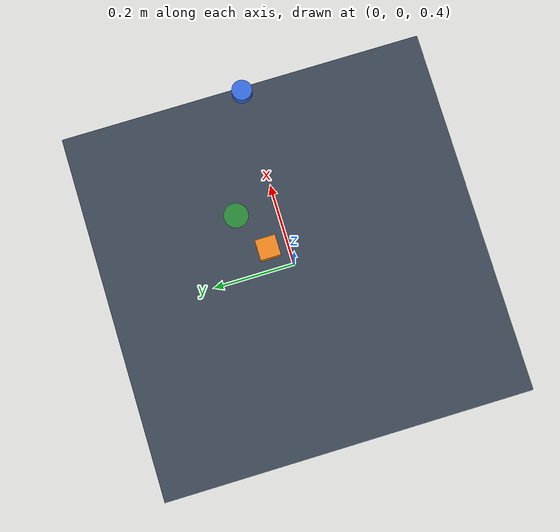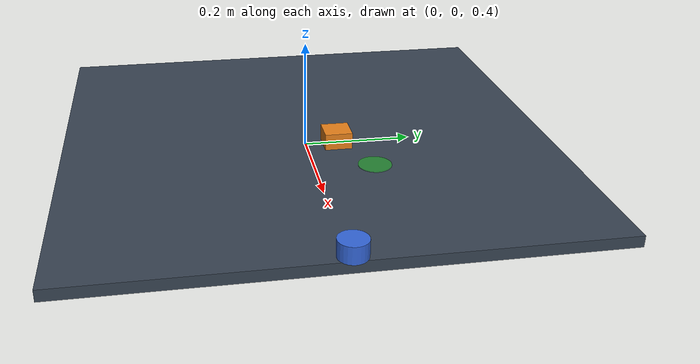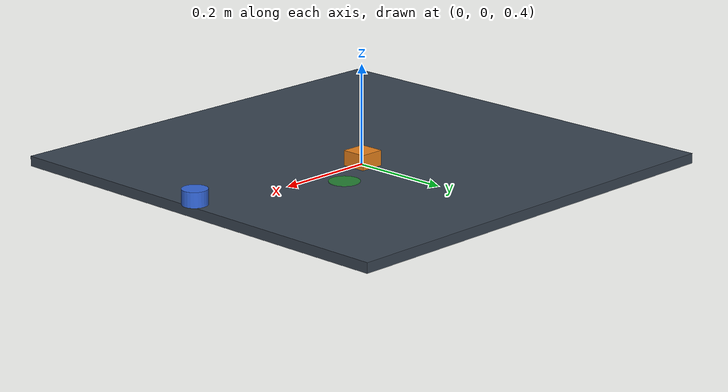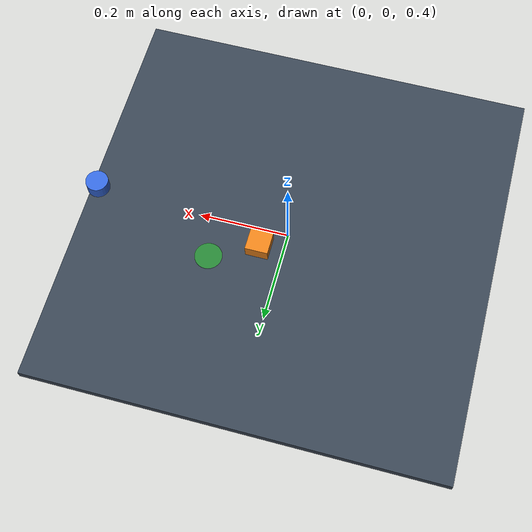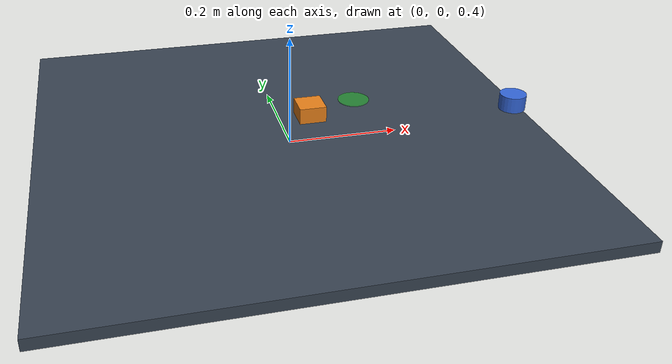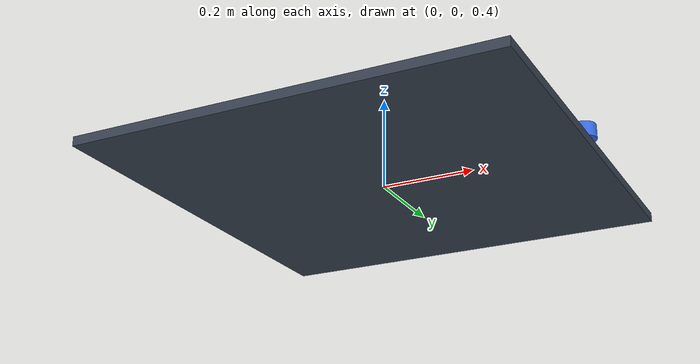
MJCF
<mujoco model="planar_push">
  <option timestep="0.002" gravity="0 0 -9.81" integrator="implicitfast"/>

  <visual>
    <headlight diffuse="0.6 0.6 0.6" ambient="0.3 0.3 0.3" specular="0 0 0"/>
    <rgba haze="0.15 0.25 0.35 1"/>
  </visual>

  <asset>
    <texture type="2d" name="checker" builtin="checker"
             rgb1="0.25 0.30 0.35" rgb2="0.18 0.22 0.28" width="512" height="512"/>
    <material name="table_mat" texture="checker" texrepeat="6 6"
              specular="0.3" shininess="0.2"/>
    <material name="ee_mat"   rgba="0.20 0.40 0.85 1.0" specular="0.9" shininess="0.8"/>
    <material name="obj_mat"  rgba="0.90 0.50 0.10 1.0" specular="0.5" shininess="0.3"/>
    <material name="goal_mat" rgba="0.10 0.85 0.10 0.45"/>
  </asset>

  <worldbody>
    <!-- Static table surface -->
    <geom name="tabletop" type="box" size="0.45 0.45 0.01" pos="0 0 0.41"
          material="table_mat" condim="3" friction="0.5 0.005 0.0001"/>

    <!-- End-effector puck — mocap-controlled kinematic body -->
    <body name="ee" mocap="true" pos="0.435 0 0.435">
      <geom name="ee_geom" type="cylinder" size="0.025 0.015"
            material="ee_mat" condim="4" friction="0.5 0.005 0.0001"/>
    </body>

    <!-- Pushable box — free body driven by contact -->
    <body name="object" pos="0.05 0.05 0.435">
      <freejoint name="object_joint"/>
      <geom name="obj_geom" type="box" size="0.025 0.025 0.015"
            material="obj_mat" mass="0.1" condim="4" friction="0.5 0.005 0.0001"/>
      <site name="obj_center" size="0.003" rgba="1 1 1 0.8"/>
    </body>

    <!-- Goal marker (visual only, repositioned at reset) -->
    <site name="goal" pos="0.15 0.10 0.422" type="cylinder"
          size="0.03 0.001" material="goal_mat"/>

    <!-- Cameras -->
    <camera name="overhead" pos="0 0 1.2" quat="1 0 0 0" mode="fixed"/>
    <camera name="side"     pos="0.9 0 0.75" xyaxes="-1 0 0 0 -0.5 0.866" mode="fixed"/>
  </worldbody>

  <contact>
    <pair geom1="ee_geom"  geom2="obj_geom"  condim="4"/>
    <pair geom1="obj_geom" geom2="tabletop"  condim="4"/>
  </contact>
</mujoco>
